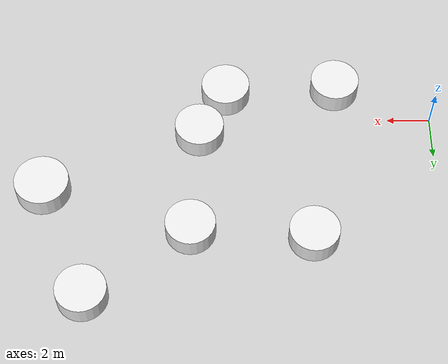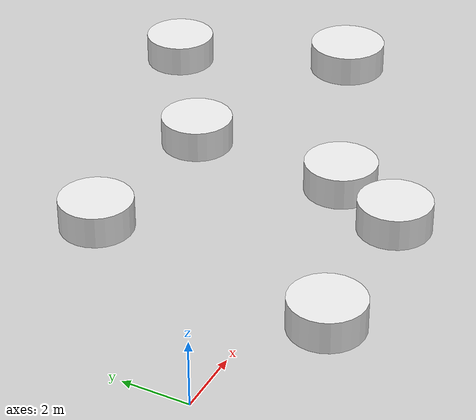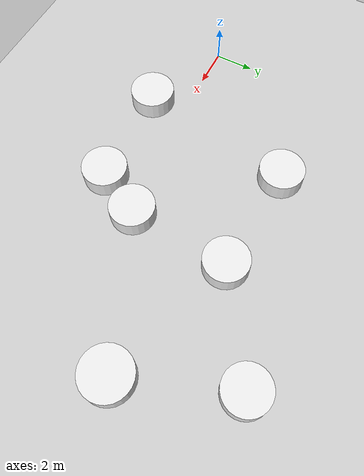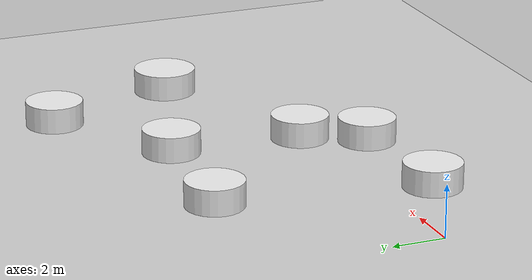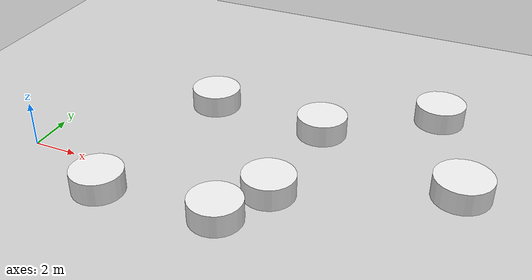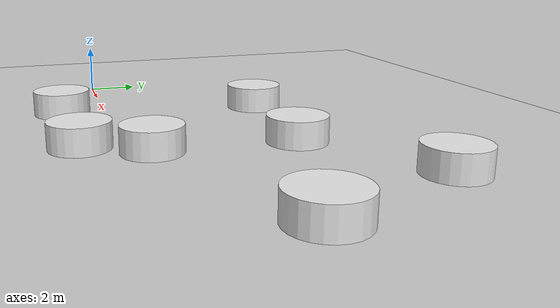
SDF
<sdf version="1.7">
 <world name="default">
  <light name="sun" type="directional">
   <pose>0 0 10 0 -0 0</pose>
   <diffuse>0.8 0.8 0.8 1</diffuse>
   <specular>0.2 0.2 0.2 1</specular>
   <attenuation>
    <range>1000</range>
    <constant>0.9</constant>
    <linear>0.01</linear>
    <quadratic>0.001</quadratic>
   </attenuation>
   <direction>-0.5 0.1 -0.9</direction>
   <spot><inner_angle>0</inner_angle><outer_angle>0</outer_angle><falloff>0</falloff></spot>
  </light>
  <model name="ground_plane">
   <static>1</static>
   <link name="link">
    <collision name="collision">
     <geometry><plane><normal>0 0 1</normal><size>100 100</size></plane></geometry>
     <surface>
      <contact><collide_bitmask>65535</collide_bitmask></contact>
      <friction><ode><mu>100</mu><mu2>50</mu2></ode></friction>
     </surface>
    </collision>
    <visual name="visual">
     <cast_shadows>0</cast_shadows>
     <geometry><plane><normal>0 0 1</normal><size>100 100</size></plane></geometry>
     <material>
      <script><uri>file://media/materials/scripts/gazebo.material</uri><name>Gazebo/Grey</name></script>
     </material>
    </visual>
   </link>
  </model>
  <gravity>0 0 -9.8</gravity>
  <magnetic_field>6e-06 2.3e-05 -4.2e-05</magnetic_field>
  <atmosphere type="adiabatic"/>
  <physics type="ode">
   <max_step_size>0.001</max_step_size>
   <real_time_factor>1</real_time_factor>
   <real_time_update_rate>3000</real_time_update_rate>
  </physics>
  <scene><ambient>0.4 0.4 0.4 1</ambient><background>0.7 0.7 0.7 1</background><shadows>1</shadows></scene>
  <spherical_coordinates>
   <surface_model>EARTH_WGS84</surface_model>
   <latitude_deg>0</latitude_deg>
   <longitude_deg>0</longitude_deg>
   <elevation>0</elevation>
   <heading_deg>0</heading_deg>
  </spherical_coordinates>
  <model name="unit_cylinder_0">
   <pose>17.9496 3.7824 0.499995 -4e-06 -4e-06 -1e-05</pose>
   <static>1</static>
   <link name="link">
    <inertial>
     <mass>1</mass>
     <inertia><ixx>0.145833</ixx><ixy>0</ixy><ixz>0</ixz><iyy>0.145833</iyy><iyz>0</iyz><izz>0.125</izz></inertia>
    </inertial>
    <collision name="collision">
     <geometry><cylinder><radius>1.23873</radius><length>1</length></cylinder></geometry>
    </collision>
    <visual name="visual">
     <geometry><cylinder><radius>1.23873</radius><length>1</length></cylinder></geometry>
     <material>
      <script><name>Gazebo/White</name><uri>file://media/materials/scripts/gazebo.material</uri></script>
     </material>
    </visual>
   </link>
  </model>
  <model name="unit_cylinder_1">
   <static>1</static>
   <pose>9.65162 -1.48541 0.499995 4e-06 4e-06 -1.6e-05</pose>
   <link name="link">
    <inertial>
     <mass>1</mass>
     <inertia><ixx>0.145833</ixx><ixy>0</ixy><ixz>0</ixz><iyy>0.145833</iyy><iyz>0</iyz><izz>0.125</izz></inertia>
    </inertial>
    <collision name="collision">
     <geometry><cylinder><radius>1.12862</radius><length>1</length></cylinder></geometry>
    </collision>
    <visual name="visual">
     <geometry><cylinder><radius>1.12862</radius><length>1</length></cylinder></geometry>
     <material>
      <script><name>Gazebo/White</name><uri>file://media/materials/scripts/gazebo.material</uri></script>
     </material>
    </visual>
   </link>
  </model>
  <model name="unit_cylinder_2">
   <static>1</static>
   <pose>10.871 0.799245 0.499992 -7e-06 7e-06 0.000141</pose>
   <link name="link">
    <inertial>
     <mass>1</mass>
     <inertia><ixx>0.145833</ixx><ixy>0</ixy><ixz>0</ixz><iyy>0.145833</iyy><iyz>0</iyz><izz>0.125</izz></inertia>
    </inertial>
    <collision name="collision">
     <geometry><cylinder><radius>1.12862</radius><length>1</length></cylinder></geometry>
    </collision>
    <visual name="visual">
     <geometry><cylinder><radius>1.12862</radius><length>1</length></cylinder></geometry>
     <material>
      <script><name>Gazebo/White</name><uri>file://media/materials/scripts/gazebo.material</uri></script>
     </material>
    </visual>
   </link>
  </model>
  <model name="unit_cylinder_3">
   <static>1</static>
   <pose>5.75992 6.3014 0.499995 -4e-06 -4e-06 -6e-06</pose>
   <link name="link">
    <inertial>
     <mass>1</mass>
     <inertia><ixx>0.145833</ixx><ixy>0</ixy><ixz>0</ixz><iyy>0.145833</iyy><iyz>0</iyz><izz>0.125</izz></inertia>
    </inertial>
    <collision name="collision">
     <geometry><cylinder><radius>1.12862</radius><length>1</length></cylinder></geometry>
    </collision>
    <visual name="visual">
     <geometry><cylinder><radius>1.12862</radius><length>1</length></cylinder></geometry>
     <material>
      <script><name>Gazebo/White</name><uri>file://media/materials/scripts/gazebo.material</uri></script>
     </material>
    </visual>
   </link>
  </model>
  <model name="unit_cylinder_4">
   <static>1</static>
   <pose>15.8558 9.14686 0.499992 -7e-06 7e-06 0.000141</pose>
   <link name="link">
    <inertial>
     <mass>1</mass>
     <inertia><ixx>0.145833</ixx><ixy>0</ixy><ixz>0</ixz><iyy>0.145833</iyy><iyz>0</iyz><izz>0.125</izz></inertia>
    </inertial>
    <collision name="collision">
     <geometry><cylinder><radius>1.12862</radius><length>1</length></cylinder></geometry>
    </collision>
    <visual name="visual">
     <geometry><cylinder><radius>1.12862</radius><length>1</length></cylinder></geometry>
     <material>
      <script><name>Gazebo/White</name><uri>file://media/materials/scripts/gazebo.material</uri></script>
     </material>
    </visual>
   </link>
  </model>
  <model name="unit_cylinder_5">
   <static>1</static>
   <pose>11.2296 5.95308 0.499995 4e-06 4e-06 -1.6e-05</pose>
   <link name="link">
    <inertial>
     <mass>1</mass>
     <inertia><ixx>0.145833</ixx><ixy>0</ixy><ixz>0</ixz><iyy>0.145833</iyy><iyz>0</iyz><izz>0.125</izz></inertia>
    </inertial>
    <collision name="collision">
     <geometry><cylinder><radius>1.12862</radius><length>1</length></cylinder></geometry>
    </collision>
    <visual name="visual">
     <geometry><cylinder><radius>1.12862</radius><length>1</length></cylinder></geometry>
     <material>
      <script><name>Gazebo/White</name><uri>file://media/materials/scripts/gazebo.material</uri></script>
     </material>
    </visual>
   </link>
  </model>
  <model name="unit_cylinder_6">
   <static>1</static>
   <pose>4.46021 -1.72618 0.499995 4e-06 4e-06 -1.6e-05</pose>
   <link name="link">
    <inertial>
     <mass>1</mass>
     <inertia><ixx>0.145833</ixx><ixy>0</ixy><ixz>0</ixz><iyy>0.145833</iyy><iyz>0</iyz><izz>0.125</izz></inertia>
    </inertial>
    <collision name="collision">
     <geometry><cylinder><radius>1.12862</radius><length>1</length></cylinder></geometry>
    </collision>
    <visual name="visual">
     <geometry><cylinder><radius>1.12862</radius><length>1</length></cylinder></geometry>
     <material>
      <script><name>Gazebo/White</name><uri>file://media/materials/scripts/gazebo.material</uri></script>
     </material>
    </visual>
   </link>
  </model>
 </world>
</sdf>
